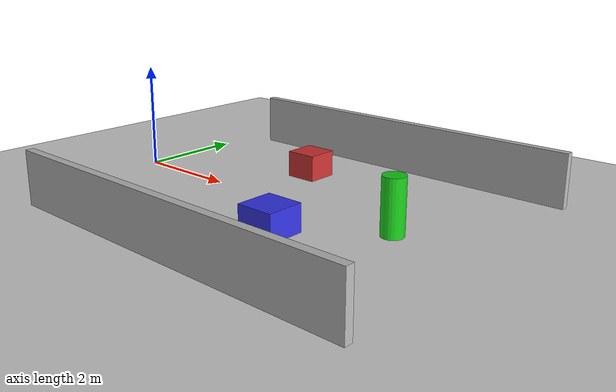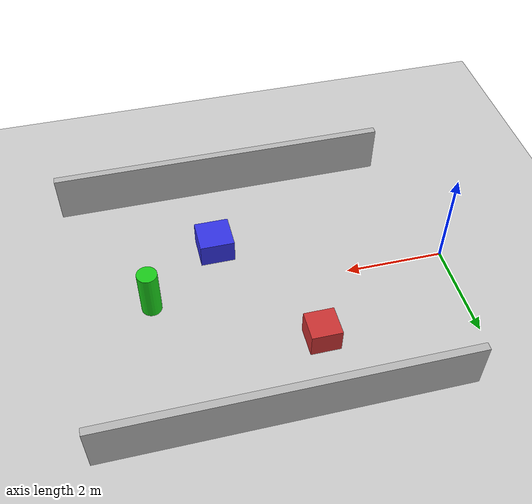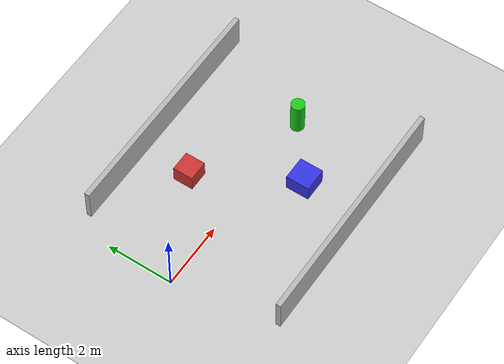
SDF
<?xml version="1.0" ?>
<sdf version="1.6">
  <world name="test_nav_world">

    <include>
      <uri>model://sun</uri>
    </include>

    <include>
      <uri>model://ground_plane</uri>
    </include>

    <model name="box_obstacle_1">
      <static>true</static>
      <pose>3.0 1.5 0.25 0 0 0</pose>
      <link name="link">
        <collision name="collision">
          <geometry>
            <box>
              <size>0.6 0.6 0.5</size>
            </box>
          </geometry>
        </collision>
        <visual name="visual">
          <geometry>
            <box>
              <size>0.6 0.6 0.5</size>
            </box>
          </geometry>
          <material>
            <ambient>0.8 0.2 0.2 1</ambient>
            <diffuse>0.8 0.2 0.2 1</diffuse>
          </material>
        </visual>
      </link>
    </model>

    <model name="box_obstacle_2">
      <static>true</static>
      <pose>4.5 -1.2 0.25 0 0 0</pose>
      <link name="link">
        <collision name="collision">
          <geometry>
            <box>
              <size>0.7 0.7 0.5</size>
            </box>
          </geometry>
        </collision>
        <visual name="visual">
          <geometry>
            <box>
              <size>0.7 0.7 0.5</size>
            </box>
          </geometry>
          <material>
            <ambient>0.2 0.2 0.9 1</ambient>
            <diffuse>0.2 0.2 0.9 1</diffuse>
          </material>
        </visual>
      </link>
    </model>

    <model name="left_wall">
      <static>true</static>
      <pose>4.0 3.0 0.5 0 0 0</pose>
      <link name="link">
        <collision name="collision">
          <geometry>
            <box>
              <size>7.0 0.15 1.0</size>
            </box>
          </geometry>
        </collision>
        <visual name="visual">
          <geometry>
            <box>
              <size>7.0 0.15 1.0</size>
            </box>
          </geometry>
        </visual>
      </link>
    </model>

    <model name="right_wall">
      <static>true</static>
      <pose>4.0 -3.0 0.5 0 0 0</pose>
      <link name="link">
        <collision name="collision">
          <geometry>
            <box>
              <size>7.0 0.15 1.0</size>
            </box>
          </geometry>
        </collision>
        <visual name="visual">
          <geometry>
            <box>
              <size>7.0 0.15 1.0</size>
            </box>
          </geometry>
        </visual>
      </link>
    </model>

    <model name="goal_marker">
      <static>true</static>
      <pose>6.0 0.0 0.5 0 0 0</pose>
      <link name="link">
        <visual name="visual">
          <geometry>
            <cylinder>
              <radius>0.2</radius>
              <length>1.0</length>
            </cylinder>
          </geometry>
          <material>
            <ambient>0.1 0.8 0.1 1</ambient>
            <diffuse>0.1 0.8 0.1 1</diffuse>
          </material>
        </visual>
      </link>
    </model>

  </world>
</sdf>
